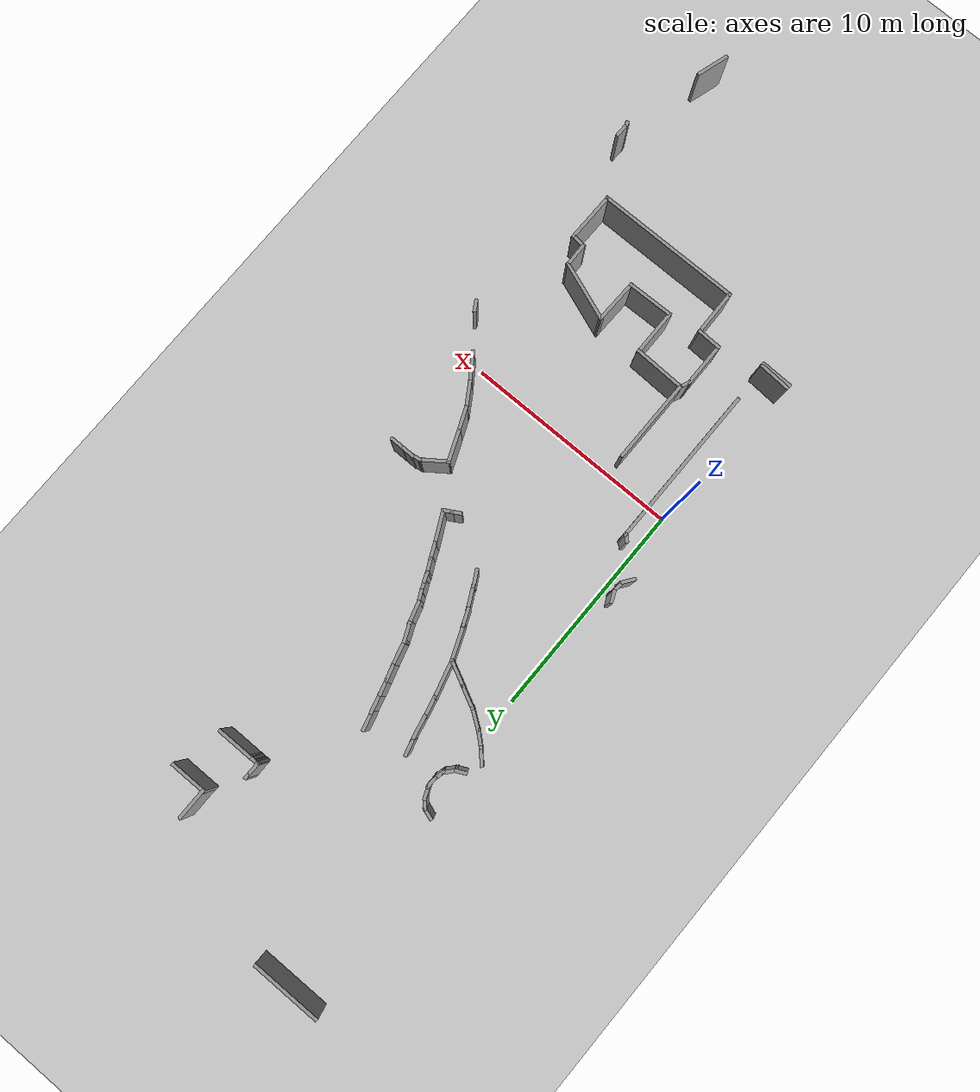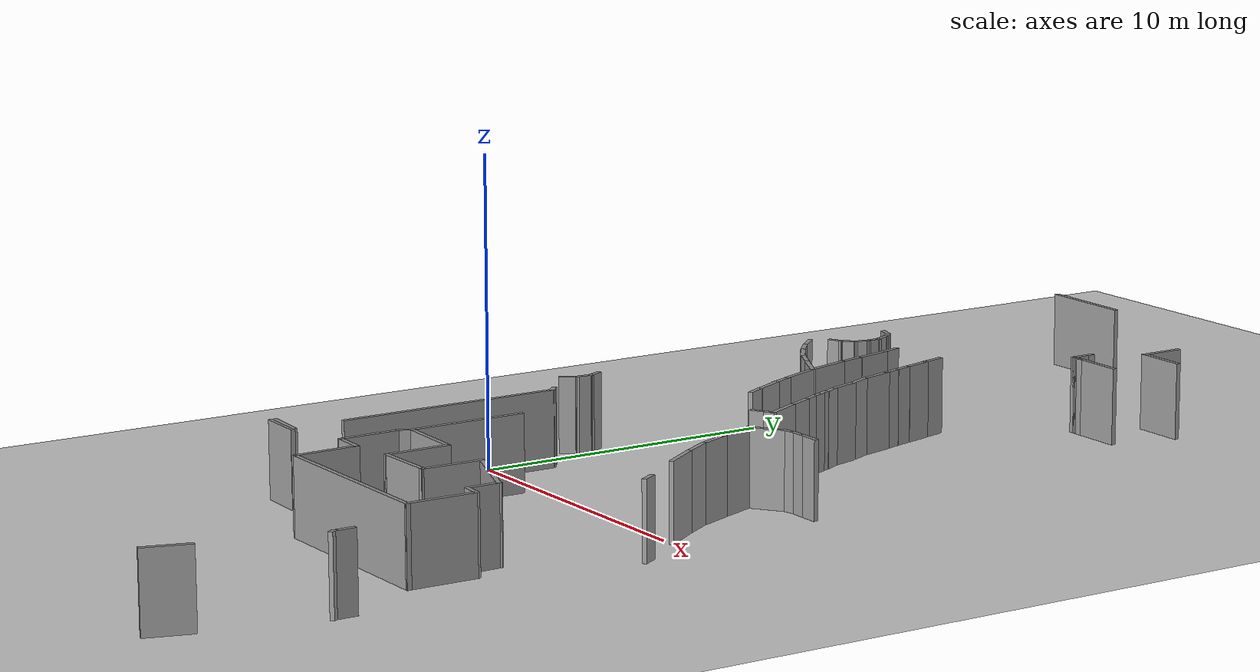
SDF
<sdf version="1.6">
 <world name="default">
  <model name="ground_plane">
   <static>1</static>
   <link name="link">
    <collision name="collision">
     <geometry><plane><normal>0 0 1</normal><size>100 100</size></plane></geometry>
     <surface><friction><ode><mu>100</mu><mu2>50</mu2></ode></friction></surface>
    </collision>
    <visual name="visual">
     <cast_shadows>0</cast_shadows>
     <geometry><plane><normal>0 0 1</normal><size>100 100</size></plane></geometry>
     <material>
      <script><uri>file://media/materials/scripts/gazebo.material</uri><name>Gazebo/Grey</name></script>
     </material>
    </visual>
   </link>
  </model>
  <model name="scene">
   <pose>1.8013 -1.70593 0 0 -0 0</pose>
   <link name="Wall_1005">
    <collision name="Wall_1005_Collision">
     <geometry><box><size>1.52737 0.15 2.5</size></box></geometry>
     <pose>0 0 1.25 0 -0 0</pose>
    </collision>
    <visual name="Wall_1005_Visual">
     <pose>0 0 1.25 0 -0 0</pose>
     <geometry><box><size>1.52737 0.15 2.5</size></box></geometry>
     <material>
      <script><uri>file://media/materials/scripts/gazebo.material</uri><name>Gazebo/Grey</name></script>
      <ambient>1 1 1 1</ambient>
     </material>
    </visual>
    <pose>-1.58332 -5.61312 0 0 0 -0.027727</pose>
   </link>
   <link name="Wall_1010">
    <collision name="Wall_1010_Collision">
     <geometry><box><size>0.579868 0.15 2.5</size></box></geometry>
     <pose>0 0 1.25 0 -0 0</pose>
    </collision>
    <visual name="Wall_1010_Visual">
     <pose>0 0 1.25 0 -0 0</pose>
     <geometry><box><size>0.579868 0.15 2.5</size></box></geometry>
     <material>
      <script><uri>file://media/materials/scripts/gazebo.material</uri><name>Gazebo/Grey</name></script>
      <ambient>1 1 1 1</ambient>
     </material>
    </visual>
    <pose>-2.20365 5.85471 0 0 0 -1.13225</pose>
   </link>
   <link name="Wall_1011">
    <collision name="Wall_1011_Collision">
     <geometry><box><size>0.650095 0.15 2.5</size></box></geometry>
     <pose>0 0 1.25 0 -0 0</pose>
    </collision>
    <visual name="Wall_1011_Visual">
     <pose>0 0 1.25 0 -0 0</pose>
     <geometry><box><size>0.650095 0.15 2.5</size></box></geometry>
     <material>
      <script><uri>file://media/materials/scripts/gazebo.material</uri><name>Gazebo/Grey</name></script>
      <ambient>1 1 1 1</ambient>
     </material>
    </visual>
    <pose>-2.12554 5.41071 0 0 0 -1.66137</pose>
   </link>
   <link name="Wall_1012">
    <collision name="Wall_1012_Collision">
     <geometry><box><size>0.65276 0.15 2.5</size></box></geometry>
     <pose>0 0 1.25 0 -0 0</pose>
    </collision>
    <visual name="Wall_1012_Visual">
     <pose>0 0 1.25 0 -0 0</pose>
     <geometry><box><size>0.65276 0.15 2.5</size></box></geometry>
     <material>
      <script><uri>file://media/materials/scripts/gazebo.material</uri><name>Gazebo/Grey</name></script>
      <ambient>1 1 1 1</ambient>
     </material>
    </visual>
    <pose>-2.28552 4.95725 0 0 0 -2.1945</pose>
   </link>
   <link name="Wall_627">
    <collision name="Wall_627_Collision">
     <geometry><box><size>3.25 0.15 2.5</size></box></geometry>
     <pose>0 0 1.25 0 -0 0</pose>
    </collision>
    <visual name="Wall_627_Visual">
     <pose>0 0 1.25 0 -0 0</pose>
     <geometry><box><size>3.25 0.15 2.5</size></box></geometry>
     <material>
      <script><uri>file://media/materials/scripts/gazebo.material</uri><name>Gazebo/Grey</name></script>
      <ambient>1 1 1 1</ambient>
     </material>
    </visual>
    <pose>-2.20221 25.8756 0 0 -0 0</pose>
   </link>
   <link name="Wall_644">
    <collision name="Wall_644_Collision">
     <geometry><box><size>1.5 0.15 2.5</size></box></geometry>
     <pose>0 0 1.25 0 -0 0</pose>
    </collision>
    <visual name="Wall_644_Visual">
     <pose>0 0 1.25 0 -0 0</pose>
     <geometry><box><size>1.5 0.15 2.5</size></box></geometry>
     <material>
      <script><uri>file://media/materials/scripts/gazebo.material</uri><name>Gazebo/Grey</name></script>
      <ambient>1 1 1 1</ambient>
     </material>
    </visual>
    <pose>5.3457 22.9019 0 0 0 -1.5708</pose>
   </link>
   <link name="Wall_646">
    <collision name="Wall_646_Collision">
     <geometry><box><size>1.75 0.15 2.5</size></box></geometry>
     <pose>0 0 1.25 0 -0 0</pose>
    </collision>
    <visual name="Wall_646_Visual">
     <pose>0 0 1.25 0 -0 0</pose>
     <geometry><box><size>1.75 0.15 2.5</size></box></geometry>
     <material>
      <script><uri>file://media/materials/scripts/gazebo.material</uri><name>Gazebo/Grey</name></script>
      <ambient>1 1 1 1</ambient>
     </material>
    </visual>
    <pose>6.12944 22.2233 0 0 -0 0</pose>
   </link>
   <link name="Wall_648">
    <collision name="Wall_648_Collision">
     <geometry><box><size>1.75 0.15 2.5</size></box></geometry>
     <pose>0 0 1.25 0 -0 0</pose>
    </collision>
    <visual name="Wall_648_Visual">
     <pose>0 0 1.25 0 -0 0</pose>
     <geometry><box><size>1.75 0.15 2.5</size></box></geometry>
     <material>
      <script><uri>file://media/materials/scripts/gazebo.material</uri><name>Gazebo/Grey</name></script>
      <ambient>1 1 1 1</ambient>
     </material>
    </visual>
    <pose>5.5735 20.0492 0 0 -0 3.14159</pose>
   </link>
   <link name="Wall_649">
    <collision name="Wall_649_Collision">
     <geometry><box><size>0.25 0.15 2.5</size></box></geometry>
     <pose>0 0 1.25 0 -0 0</pose>
    </collision>
    <visual name="Wall_649_Visual">
     <pose>0 0 1.25 0 -0 0</pose>
     <geometry><box><size>0.25 0.15 2.5</size></box></geometry>
     <material>
      <script><uri>file://media/materials/scripts/gazebo.material</uri><name>Gazebo/Grey</name></script>
      <ambient>1 1 1 1</ambient>
     </material>
    </visual>
    <pose>4.7235 20.0492 0 0 -0 3.14159</pose>
   </link>
   <link name="Wall_650">
    <collision name="Wall_650_Collision">
     <geometry><box><size>0.25 0.15 2.5</size></box></geometry>
     <pose>0 0 1.25 0 -0 0</pose>
    </collision>
    <visual name="Wall_650_Visual">
     <pose>0 0 1.25 0 -0 0</pose>
     <geometry><box><size>0.25 0.15 2.5</size></box></geometry>
     <material>
      <script><uri>file://media/materials/scripts/gazebo.material</uri><name>Gazebo/Grey</name></script>
      <ambient>1 1 1 1</ambient>
     </material>
    </visual>
    <pose>4.6235 20.0492 0 0 -0 3.14159</pose>
   </link>
   <link name="Wall_651">
    <collision name="Wall_651_Collision">
     <geometry><box><size>0.25 0.15 2.5</size></box></geometry>
     <pose>0 0 1.25 0 -0 0</pose>
    </collision>
    <visual name="Wall_651_Visual">
     <pose>0 0 1.25 0 -0 0</pose>
     <geometry><box><size>0.25 0.15 2.5</size></box></geometry>
     <material>
      <script><uri>file://media/materials/scripts/gazebo.material</uri><name>Gazebo/Grey</name></script>
      <ambient>1 1 1 1</ambient>
     </material>
    </visual>
    <pose>4.5235 20.0492 0 0 -0 3.14159</pose>
   </link>
   <link name="Wall_652">
    <collision name="Wall_652_Collision">
     <geometry><box><size>0.237671 0.15 2.5</size></box></geometry>
     <pose>0 0 1.25 0 -0 0</pose>
    </collision>
    <visual name="Wall_652_Visual">
     <pose>0 0 1.25 0 -0 0</pose>
     <geometry><box><size>0.237671 0.15 2.5</size></box></geometry>
     <material>
      <script><uri>file://media/materials/scripts/gazebo.material</uri><name>Gazebo/Grey</name></script>
      <ambient>1 1 1 1</ambient>
     </material>
    </visual>
    <pose>4.42978 20.0524 0 0 -0 3.06994</pose>
   </link>
   <link name="Wall_653">
    <collision name="Wall_653_Collision">
     <geometry><box><size>0.75 0.15 2.5</size></box></geometry>
     <pose>0 0 1.25 0 -0 0</pose>
    </collision>
    <visual name="Wall_653_Visual">
     <pose>0 0 1.25 0 -0 0</pose>
     <geometry><box><size>0.75 0.15 2.5</size></box></geometry>
     <material>
      <script><uri>file://media/materials/scripts/gazebo.material</uri><name>Gazebo/Grey</name></script>
      <ambient>1 1 1 1</ambient>
     </material>
    </visual>
    <pose>4.38605 20.3492 0 0 -0 1.5708</pose>
   </link>
   <link name="Wall_654">
    <collision name="Wall_654_Collision">
     <geometry><box><size>0.25 0.15 2.5</size></box></geometry>
     <pose>0 0 1.25 0 -0 0</pose>
    </collision>
    <visual name="Wall_654_Visual">
     <pose>0 0 1.25 0 -0 0</pose>
     <geometry><box><size>0.25 0.15 2.5</size></box></geometry>
     <material>
      <script><uri>file://media/materials/scripts/gazebo.material</uri><name>Gazebo/Grey</name></script>
      <ambient>1 1 1 1</ambient>
     </material>
    </visual>
    <pose>4.38605 20.7055 0 0 -0 1.5708</pose>
   </link>
   <link name="Wall_657">
    <collision name="Wall_657_Collision">
     <geometry><box><size>0.898064 0.15 2.5</size></box></geometry>
     <pose>0 0 1.25 0 -0 0</pose>
    </collision>
    <visual name="Wall_657_Visual">
     <pose>0 0 1.25 0 -0 0</pose>
     <geometry><box><size>0.898064 0.15 2.5</size></box></geometry>
     <material>
      <script><uri>file://media/materials/scripts/gazebo.material</uri><name>Gazebo/Grey</name></script>
      <ambient>1 1 1 1</ambient>
     </material>
    </visual>
    <pose>2.1438 15.9853 0 0 0 -1.31593</pose>
   </link>
   <link name="Wall_658">
    <collision name="Wall_658_Collision">
     <geometry><box><size>0.954227 0.15 2.5</size></box></geometry>
     <pose>0 0 1.25 0 -0 0</pose>
    </collision>
    <visual name="Wall_658_Visual">
     <pose>0 0 1.25 0 -0 0</pose>
     <geometry><box><size>0.954227 0.15 2.5</size></box></geometry>
     <material>
      <script><uri>file://media/materials/scripts/gazebo.material</uri><name>Gazebo/Grey</name></script>
      <ambient>1 1 1 1</ambient>
     </material>
    </visual>
    <pose>2.35365 15.2461 0 0 0 -1.30804</pose>
   </link>
   <link name="Wall_659">
    <collision name="Wall_659_Collision">
     <geometry><box><size>0.742305 0.15 2.5</size></box></geometry>
     <pose>0 0 1.25 0 -0 0</pose>
    </collision>
    <visual name="Wall_659_Visual">
     <pose>0 0 1.25 0 -0 0</pose>
     <geometry><box><size>0.742305 0.15 2.5</size></box></geometry>
     <material>
      <script><uri>file://media/materials/scripts/gazebo.material</uri><name>Gazebo/Grey</name></script>
      <ambient>1 1 1 1</ambient>
     </material>
    </visual>
    <pose>2.53019 14.5736 0 0 0 -1.28604</pose>
   </link>
   <link name="Wall_661">
    <collision name="Wall_661_Collision">
     <geometry><box><size>0.777394 0.15 2.5</size></box></geometry>
     <pose>0 0 1.25 0 -0 0</pose>
    </collision>
    <visual name="Wall_661_Visual">
     <pose>0 0 1.25 0 -0 0</pose>
     <geometry><box><size>0.777394 0.15 2.5</size></box></geometry>
     <material>
      <script><uri>file://media/materials/scripts/gazebo.material</uri><name>Gazebo/Grey</name></script>
      <ambient>1 1 1 1</ambient>
     </material>
    </visual>
    <pose>2.70214 13.9774 0 0 0 -1.28397</pose>
   </link>
   <link name="Wall_662">
    <collision name="Wall_662_Collision">
     <geometry><box><size>1.22569 0.15 2.5</size></box></geometry>
     <pose>0 0 1.25 0 -0 0</pose>
    </collision>
    <visual name="Wall_662_Visual">
     <pose>0 0 1.25 0 -0 0</pose>
     <geometry><box><size>1.22569 0.15 2.5</size></box></geometry>
     <material>
      <script><uri>file://media/materials/scripts/gazebo.material</uri><name>Gazebo/Grey</name></script>
      <ambient>1 1 1 1</ambient>
     </material>
    </visual>
    <pose>2.93879 13.1563 0 0 0 -1.31362</pose>
   </link>
   <link name="Wall_663">
    <collision name="Wall_663_Collision">
     <geometry><box><size>0.929904 0.15 2.5</size></box></geometry>
     <pose>0 0 1.25 0 -0 0</pose>
    </collision>
    <visual name="Wall_663_Visual">
     <pose>0 0 1.25 0 -0 0</pose>
     <geometry><box><size>0.929904 0.15 2.5</size></box></geometry>
     <material>
      <script><uri>file://media/materials/scripts/gazebo.material</uri><name>Gazebo/Grey</name></script>
      <ambient>1 1 1 1</ambient>
     </material>
    </visual>
    <pose>3.23258 12.2903 0 0 0 -1.15647</pose>
   </link>
   <link name="Wall_664">
    <collision name="Wall_664_Collision">
     <geometry><box><size>1.06242 0.15 2.5</size></box></geometry>
     <pose>0 0 1.25 0 -0 0</pose>
    </collision>
    <visual name="Wall_664_Visual">
     <pose>0 0 1.25 0 -0 0</pose>
     <geometry><box><size>1.06242 0.15 2.5</size></box></geometry>
     <material>
      <script><uri>file://media/materials/scripts/gazebo.material</uri><name>Gazebo/Grey</name></script>
      <ambient>1 1 1 1</ambient>
     </material>
    </visual>
    <pose>3.52732 11.4951 0 0 0 -1.28948</pose>
   </link>
   <link name="Wall_666">
    <collision name="Wall_666_Collision">
     <geometry><box><size>0.61358 0.15 2.5</size></box></geometry>
     <pose>0 0 1.25 0 -0 0</pose>
    </collision>
    <visual name="Wall_666_Visual">
     <pose>0 0 1.25 0 -0 0</pose>
     <geometry><box><size>0.61358 0.15 2.5</size></box></geometry>
     <material>
      <script><uri>file://media/materials/scripts/gazebo.material</uri><name>Gazebo/Grey</name></script>
      <ambient>1 1 1 1</ambient>
     </material>
    </visual>
    <pose>3.76923 10.8497 0 0 0 -1.10476</pose>
   </link>
   <link name="Wall_667">
    <collision name="Wall_667_Collision">
     <geometry><box><size>0.543085 0.15 2.5</size></box></geometry>
     <pose>0 0 1.25 0 -0 0</pose>
    </collision>
    <visual name="Wall_667_Visual">
     <pose>0 0 1.25 0 -0 0</pose>
     <geometry><box><size>0.543085 0.15 2.5</size></box></geometry>
     <material>
      <script><uri>file://media/materials/scripts/gazebo.material</uri><name>Gazebo/Grey</name></script>
      <ambient>1 1 1 1</ambient>
     </material>
    </visual>
    <pose>3.94088 10.4625 0 0 0 -1.15936</pose>
   </link>
   <link name="Wall_668">
    <collision name="Wall_668_Collision">
     <geometry><box><size>0.524174 0.15 2.5</size></box></geometry>
     <pose>0 0 1.25 0 -0 0</pose>
    </collision>
    <visual name="Wall_668_Visual">
     <pose>0 0 1.25 0 -0 0</pose>
     <geometry><box><size>0.524174 0.15 2.5</size></box></geometry>
     <material>
      <script><uri>file://media/materials/scripts/gazebo.material</uri><name>Gazebo/Grey</name></script>
      <ambient>1 1 1 1</ambient>
     </material>
    </visual>
    <pose>4.10027 10.1088 0 0 0 -1.18916</pose>
   </link>
   <link name="Wall_669">
    <collision name="Wall_669_Collision">
     <geometry><box><size>0.726387 0.15 2.5</size></box></geometry>
     <pose>0 0 1.25 0 -0 0</pose>
    </collision>
    <visual name="Wall_669_Visual">
     <pose>0 0 1.25 0 -0 0</pose>
     <geometry><box><size>0.726387 0.15 2.5</size></box></geometry>
     <material>
      <script><uri>file://media/materials/scripts/gazebo.material</uri><name>Gazebo/Grey</name></script>
      <ambient>1 1 1 1</ambient>
     </material>
    </visual>
    <pose>4.29836 9.66874 0 0 0 -1.10896</pose>
   </link>
   <link name="Wall_670">
    <collision name="Wall_670_Collision">
     <geometry><box><size>0.813438 0.15 2.5</size></box></geometry>
     <pose>0 0 1.25 0 -0 0</pose>
    </collision>
    <visual name="Wall_670_Visual">
     <pose>0 0 1.25 0 -0 0</pose>
     <geometry><box><size>0.813438 0.15 2.5</size></box></geometry>
     <material>
      <script><uri>file://media/materials/scripts/gazebo.material</uri><name>Gazebo/Grey</name></script>
      <ambient>1 1 1 1</ambient>
     </material>
    </visual>
    <pose>4.5632 9.11676 0 0 0 -1.14698</pose>
   </link>
   <link name="Wall_671">
    <collision name="Wall_671_Collision">
     <geometry><box><size>1.53188 0.15 2.5</size></box></geometry>
     <pose>0 0 1.25 0 -0 0</pose>
    </collision>
    <visual name="Wall_671_Visual">
     <pose>0 0 1.25 0 -0 0</pose>
     <geometry><box><size>1.53188 0.15 2.5</size></box></geometry>
     <material>
      <script><uri>file://media/materials/scripts/gazebo.material</uri><name>Gazebo/Grey</name></script>
      <ambient>1 1 1 1</ambient>
     </material>
    </visual>
    <pose>5.00804 8.18772 0 0 0 -1.10806</pose>
   </link>
   <link name="Wall_672">
    <collision name="Wall_672_Collision">
     <geometry><box><size>0.516754 0.15 2.5</size></box></geometry>
     <pose>0 0 1.25 0 -0 0</pose>
    </collision>
    <visual name="Wall_672_Visual">
     <pose>0 0 1.25 0 -0 0</pose>
     <geometry><box><size>0.516754 0.15 2.5</size></box></geometry>
     <material>
      <script><uri>file://media/materials/scripts/gazebo.material</uri><name>Gazebo/Grey</name></script>
      <ambient>1 1 1 1</ambient>
     </material>
    </visual>
    <pose>5.16012 7.48195 0 0 0 -2.64417</pose>
   </link>
   <link name="Wall_673">
    <collision name="Wall_673_Collision">
     <geometry><box><size>0.5 0.15 2.5</size></box></geometry>
     <pose>0 0 1.25 0 -0 0</pose>
    </collision>
    <visual name="Wall_673_Visual">
     <pose>0 0 1.25 0 -0 0</pose>
     <geometry><box><size>0.5 0.15 2.5</size></box></geometry>
     <material>
      <script><uri>file://media/materials/scripts/gazebo.material</uri><name>Gazebo/Grey</name></script>
      <ambient>1 1 1 1</ambient>
     </material>
    </visual>
    <pose>4.85221 7.30695 0 0 0 -2.61799</pose>
   </link>
   <link name="Wall_675">
    <collision name="Wall_675_Collision">
     <geometry><box><size>0.75 0.15 2.5</size></box></geometry>
     <pose>0 0 1.25 0 -0 0</pose>
    </collision>
    <visual name="Wall_675_Visual">
     <pose>0 0 1.25 0 -0 0</pose>
     <geometry><box><size>0.75 0.15 2.5</size></box></geometry>
     <material>
      <script><uri>file://media/materials/scripts/gazebo.material</uri><name>Gazebo/Grey</name></script>
      <ambient>1 1 1 1</ambient>
     </material>
    </visual>
    <pose>0.193089 15.7254 0 0 0 -1.309</pose>
   </link>
   <link name="Wall_676">
    <collision name="Wall_676_Collision">
     <geometry><box><size>1.24609 0.15 2.5</size></box></geometry>
     <pose>0 0 1.25 0 -0 0</pose>
    </collision>
    <visual name="Wall_676_Visual">
     <pose>0 0 1.25 0 -0 0</pose>
     <geometry><box><size>1.24609 0.15 2.5</size></box></geometry>
     <material>
      <script><uri>file://media/materials/scripts/gazebo.material</uri><name>Gazebo/Grey</name></script>
      <ambient>1 1 1 1</ambient>
     </material>
    </visual>
    <pose>0.402759 14.9002 0 0 0 -1.35502</pose>
   </link>
   <link name="Wall_677">
    <collision name="Wall_677_Collision">
     <geometry><box><size>0.978579 0.15 2.5</size></box></geometry>
     <pose>0 0 1.25 0 -0 0</pose>
    </collision>
    <visual name="Wall_677_Visual">
     <pose>0 0 1.25 0 -0 0</pose>
     <geometry><box><size>0.978579 0.15 2.5</size></box></geometry>
     <material>
      <script><uri>file://media/materials/scripts/gazebo.material</uri><name>Gazebo/Grey</name></script>
      <ambient>1 1 1 1</ambient>
     </material>
    </visual>
    <pose>0.600729 13.9617 0 0 0 -1.33865</pose>
   </link>
   <link name="Wall_678">
    <collision name="Wall_678_Collision">
     <geometry><box><size>1.75786 0.15 2.5</size></box></geometry>
     <pose>0 0 1.25 0 -0 0</pose>
    </collision>
    <visual name="Wall_678_Visual">
     <pose>0 0 1.25 0 -0 0</pose>
     <geometry><box><size>1.75786 0.15 2.5</size></box></geometry>
     <material>
      <script><uri>file://media/materials/scripts/gazebo.material</uri><name>Gazebo/Grey</name></script>
      <ambient>1 1 1 1</ambient>
     </material>
    </visual>
    <pose>0.906082 12.7679 0 0 0 -1.30646</pose>
   </link>
   <link name="Wall_681">
    <collision name="Wall_681_Collision">
     <geometry><box><size>1.05719 0.15 2.5</size></box></geometry>
     <pose>0 0 1.25 0 -0 0</pose>
    </collision>
    <visual name="Wall_681_Visual">
     <pose>0 0 1.25 0 -0 0</pose>
     <geometry><box><size>1.05719 0.15 2.5</size></box></geometry>
     <material>
      <script><uri>file://media/materials/scripts/gazebo.material</uri><name>Gazebo/Grey</name></script>
      <ambient>1 1 1 1</ambient>
     </material>
    </visual>
    <pose>-1.09446 13.165 0 0 0 -0.624079</pose>
   </link>
   <link name="Wall_682">
    <collision name="Wall_682_Collision">
     <geometry><box><size>1.10113 0.15 2.5</size></box></geometry>
     <pose>0 0 1.25 0 -0 0</pose>
    </collision>
    <visual name="Wall_682_Visual">
     <pose>0 0 1.25 0 -0 0</pose>
     <geometry><box><size>1.10113 0.15 2.5</size></box></geometry>
     <material>
      <script><uri>file://media/materials/scripts/gazebo.material</uri><name>Gazebo/Grey</name></script>
      <ambient>1 1 1 1</ambient>
     </material>
    </visual>
    <pose>-0.300525 12.7029 0 0 0 -0.461373</pose>
   </link>
   <link name="Wall_683">
    <collision name="Wall_683_Collision">
     <geometry><box><size>1.26019 0.15 2.5</size></box></geometry>
     <pose>0 0 1.25 0 -0 0</pose>
    </collision>
    <visual name="Wall_683_Visual">
     <pose>0 0 1.25 0 -0 0</pose>
     <geometry><box><size>1.26019 0.15 2.5</size></box></geometry>
     <material>
      <script><uri>file://media/materials/scripts/gazebo.material</uri><name>Gazebo/Grey</name></script>
      <ambient>1 1 1 1</ambient>
     </material>
    </visual>
    <pose>0.624616 12.2341 0 0 0 -0.452009</pose>
   </link>
   <link name="Wall_684">
    <collision name="Wall_684_Collision">
     <geometry><box><size>1.59653 0.15 2.5</size></box></geometry>
     <pose>0 0 1.25 0 -0 0</pose>
    </collision>
    <visual name="Wall_684_Visual">
     <pose>0 0 1.25 0 -0 0</pose>
     <geometry><box><size>1.59653 0.15 2.5</size></box></geometry>
     <material>
      <script><uri>file://media/materials/scripts/gazebo.material</uri><name>Gazebo/Grey</name></script>
      <ambient>1 1 1 1</ambient>
     </material>
    </visual>
    <pose>1.39246 11.3054 0 0 0 -1.1904</pose>
   </link>
   <link name="Wall_685">
    <collision name="Wall_685_Collision">
     <geometry><box><size>0.869309 0.15 2.5</size></box></geometry>
     <pose>0 0 1.25 0 -0 0</pose>
    </collision>
    <visual name="Wall_685_Visual">
     <pose>0 0 1.25 0 -0 0</pose>
     <geometry><box><size>0.869309 0.15 2.5</size></box></geometry>
     <material>
      <script><uri>file://media/materials/scripts/gazebo.material</uri><name>Gazebo/Grey</name></script>
      <ambient>1 1 1 1</ambient>
     </material>
    </visual>
    <pose>1.81099 10.3153 0 0 0 -1.18506</pose>
   </link>
   <link name="Wall_686">
    <collision name="Wall_686_Collision">
     <geometry><box><size>1.11078 0.15 2.5</size></box></geometry>
     <pose>0 0 1.25 0 -0 0</pose>
    </collision>
    <visual name="Wall_686_Visual">
     <pose>0 0 1.25 0 -0 0</pose>
     <geometry><box><size>1.11078 0.15 2.5</size></box></geometry>
     <material>
      <script><uri>file://media/materials/scripts/gazebo.material</uri><name>Gazebo/Grey</name></script>
      <ambient>1 1 1 1</ambient>
     </material>
    </visual>
    <pose>2.17707 9.56812 0 0 0 -1.1039</pose>
   </link>
   <link name="Wall_687">
    <collision name="Wall_687_Collision">
     <geometry><box><size>0.80842 0.15 2.5</size></box></geometry>
     <pose>0 0 1.25 0 -0 0</pose>
    </collision>
    <visual name="Wall_687_Visual">
     <pose>0 0 1.25 0 -0 0</pose>
     <geometry><box><size>0.80842 0.15 2.5</size></box></geometry>
     <material>
      <script><uri>file://media/materials/scripts/gazebo.material</uri><name>Gazebo/Grey</name></script>
      <ambient>1 1 1 1</ambient>
     </material>
    </visual>
    <pose>2.53581 8.85027 0 0 0 -1.07249</pose>
   </link>
   <link name="Wall_689">
    <collision name="Wall_689_Collision">
     <geometry><box><size>0.830145 0.15 2.5</size></box></geometry>
     <pose>0 0 1.25 0 -0 0</pose>
    </collision>
    <visual name="Wall_689_Visual">
     <pose>0 0 1.25 0 -0 0</pose>
     <geometry><box><size>0.830145 0.15 2.5</size></box></geometry>
     <material>
      <script><uri>file://media/materials/scripts/gazebo.material</uri><name>Gazebo/Grey</name></script>
      <ambient>1 1 1 1</ambient>
     </material>
    </visual>
    <pose>-1.7302 13.6533 0 0 -0 2.42551</pose>
   </link>
   <link name="Wall_690">
    <collision name="Wall_690_Collision">
     <geometry><box><size>0.861156 0.15 2.5</size></box></geometry>
     <pose>0 0 1.25 0 -0 0</pose>
    </collision>
    <visual name="Wall_690_Visual">
     <pose>0 0 1.25 0 -0 0</pose>
     <geometry><box><size>0.861156 0.15 2.5</size></box></geometry>
     <material>
      <script><uri>file://media/materials/scripts/gazebo.material</uri><name>Gazebo/Grey</name></script>
      <ambient>1 1 1 1</ambient>
     </material>
    </visual>
    <pose>-2.22152 14.1335 0 0 -0 2.33412</pose>
   </link>
   <link name="Wall_702">
    <collision name="Wall_702_Collision">
     <geometry><box><size>0.601332 0.15 2.5</size></box></geometry>
     <pose>0 0 1.25 0 -0 0</pose>
    </collision>
    <visual name="Wall_702_Visual">
     <pose>0 0 1.25 0 -0 0</pose>
     <geometry><box><size>0.601332 0.15 2.5</size></box></geometry>
     <material>
      <script><uri>file://media/materials/scripts/gazebo.material</uri><name>Gazebo/Grey</name></script>
      <ambient>1 1 1 1</ambient>
     </material>
    </visual>
    <pose>-2.03798 17.1932 0 0 0 -0.328043</pose>
   </link>
   <link name="Wall_703">
    <collision name="Wall_703_Collision">
     <geometry><box><size>0.545925 0.15 2.5</size></box></geometry>
     <pose>0 0 1.25 0 -0 0</pose>
    </collision>
    <visual name="Wall_703_Visual">
     <pose>0 0 1.25 0 -0 0</pose>
     <geometry><box><size>0.545925 0.15 2.5</size></box></geometry>
     <material>
      <script><uri>file://media/materials/scripts/gazebo.material</uri><name>Gazebo/Grey</name></script>
      <ambient>1 1 1 1</ambient>
     </material>
    </visual>
    <pose>-1.68832 16.9692 0 0 0 -0.870093</pose>
   </link>
   <link name="Wall_704">
    <collision name="Wall_704_Collision">
     <geometry><box><size>0.621068 0.15 2.5</size></box></geometry>
     <pose>0 0 1.25 0 -0 0</pose>
    </collision>
    <visual name="Wall_704_Visual">
     <pose>0 0 1.25 0 -0 0</pose>
     <geometry><box><size>0.621068 0.15 2.5</size></box></geometry>
     <material>
      <script><uri>file://media/materials/scripts/gazebo.material</uri><name>Gazebo/Grey</name></script>
      <ambient>1 1 1 1</ambient>
     </material>
    </visual>
    <pose>-1.46693 16.6102 0 0 0 -1.16144</pose>
   </link>
   <link name="Wall_705">
    <collision name="Wall_705_Collision">
     <geometry><box><size>0.586849 0.15 2.5</size></box></geometry>
     <pose>0 0 1.25 0 -0 0</pose>
    </collision>
    <visual name="Wall_705_Visual">
     <pose>0 0 1.25 0 -0 0</pose>
     <geometry><box><size>0.586849 0.15 2.5</size></box></geometry>
     <material>
      <script><uri>file://media/materials/scripts/gazebo.material</uri><name>Gazebo/Grey</name></script>
      <ambient>1 1 1 1</ambient>
     </material>
    </visual>
    <pose>-1.36271 16.1757 0 0 0 -1.56125</pose>
   </link>
   <link name="Wall_706">
    <collision name="Wall_706_Collision">
     <geometry><box><size>0.566044 0.15 2.5</size></box></geometry>
     <pose>0 0 1.25 0 -0 0</pose>
    </collision>
    <visual name="Wall_706_Visual">
     <pose>0 0 1.25 0 -0 0</pose>
     <geometry><box><size>0.566044 0.15 2.5</size></box></geometry>
     <material>
      <script><uri>file://media/materials/scripts/gazebo.material</uri><name>Gazebo/Grey</name></script>
      <ambient>1 1 1 1</ambient>
     </material>
    </visual>
    <pose>-1.42247 15.7563 0 0 0 -1.83065</pose>
   </link>
   <link name="Wall_707">
    <collision name="Wall_707_Collision">
     <geometry><box><size>0.626015 0.15 2.5</size></box></geometry>
     <pose>0 0 1.25 0 -0 0</pose>
    </collision>
    <visual name="Wall_707_Visual">
     <pose>0 0 1.25 0 -0 0</pose>
     <geometry><box><size>0.626015 0.15 2.5</size></box></geometry>
     <material>
      <script><uri>file://media/materials/scripts/gazebo.material</uri><name>Gazebo/Grey</name></script>
      <ambient>1 1 1 1</ambient>
     </material>
    </visual>
    <pose>-1.64295 15.3778 0 0 0 -2.30032</pose>
   </link>
   <link name="Wall_708">
    <collision name="Wall_708_Collision">
     <geometry><box><size>0.54591 0.15 2.5</size></box></geometry>
     <pose>0 0 1.25 0 -0 0</pose>
    </collision>
    <visual name="Wall_708_Visual">
     <pose>0 0 1.25 0 -0 0</pose>
     <geometry><box><size>0.54591 0.15 2.5</size></box></geometry>
     <material>
      <script><uri>file://media/materials/scripts/gazebo.material</uri><name>Gazebo/Grey</name></script>
      <ambient>1 1 1 1</ambient>
     </material>
    </visual>
    <pose>-1.98829 15.1144 0 0 0 -2.69238</pose>
   </link>
   <link name="Wall_714">
    <collision name="Wall_714_Collision">
     <geometry><box><size>0.75 0.15 2.5</size></box></geometry>
     <pose>0 0 1.25 0 -0 0</pose>
    </collision>
    <visual name="Wall_714_Visual">
     <pose>0 0 1.25 0 -0 0</pose>
     <geometry><box><size>0.75 0.15 2.5</size></box></geometry>
     <material>
      <script><uri>file://media/materials/scripts/gazebo.material</uri><name>Gazebo/Grey</name></script>
      <ambient>1 1 1 1</ambient>
     </material>
    </visual>
    <pose>8.52841 6.65926 0 0 -0 3.14159</pose>
   </link>
   <link name="Wall_715">
    <collision name="Wall_715_Collision">
     <geometry><box><size>0.631739 0.15 2.5</size></box></geometry>
     <pose>0 0 1.25 0 -0 0</pose>
    </collision>
    <visual name="Wall_715_Visual">
     <pose>0 0 1.25 0 -0 0</pose>
     <geometry><box><size>0.631739 0.15 2.5</size></box></geometry>
     <material>
      <script><uri>file://media/materials/scripts/gazebo.material</uri><name>Gazebo/Grey</name></script>
      <ambient>1 1 1 1</ambient>
     </material>
    </visual>
    <pose>7.98754 6.65926 0 0 -0 3.14159</pose>
   </link>
   <link name="Wall_716">
    <collision name="Wall_716_Collision">
     <geometry><box><size>0.488525 0.15 2.5</size></box></geometry>
     <pose>0 0 1.25 0 -0 0</pose>
    </collision>
    <visual name="Wall_716_Visual">
     <pose>0 0 1.25 0 -0 0</pose>
     <geometry><box><size>0.488525 0.15 2.5</size></box></geometry>
     <material>
      <script><uri>file://media/materials/scripts/gazebo.material</uri><name>Gazebo/Grey</name></script>
      <ambient>1 1 1 1</ambient>
     </material>
    </visual>
    <pose>7.57489 6.61946 0 0 0 -2.96995</pose>
   </link>
   <link name="Wall_717">
    <collision name="Wall_717_Collision">
     <geometry><box><size>1.33116 0.15 2.5</size></box></geometry>
     <pose>0 0 1.25 0 -0 0</pose>
    </collision>
    <visual name="Wall_717_Visual">
     <pose>0 0 1.25 0 -0 0</pose>
     <geometry><box><size>1.33116 0.15 2.5</size></box></geometry>
     <material>
      <script><uri>file://media/materials/scripts/gazebo.material</uri><name>Gazebo/Grey</name></script>
      <ambient>1 1 1 1</ambient>
     </material>
    </visual>
    <pose>6.92962 6.23965 0 0 0 -2.51671</pose>
   </link>
   <link name="Wall_718">
    <collision name="Wall_718_Collision">
     <geometry><box><size>1.47101 0.15 2.5</size></box></geometry>
     <pose>0 0 1.25 0 -0 0</pose>
    </collision>
    <visual name="Wall_718_Visual">
     <pose>0 0 1.25 0 -0 0</pose>
     <geometry><box><size>1.47101 0.15 2.5</size></box></geometry>
     <material>
      <script><uri>file://media/materials/scripts/gazebo.material</uri><name>Gazebo/Grey</name></script>
      <ambient>1 1 1 1</ambient>
     </material>
    </visual>
    <pose>6.69979 5.27696 0 0 0 -1.18401</pose>
   </link>
   <link name="Wall_719">
    <collision name="Wall_719_Collision">
     <geometry><box><size>1.2077 0.15 2.5</size></box></geometry>
     <pose>0 0 1.25 0 -0 0</pose>
    </collision>
    <visual name="Wall_719_Visual">
     <pose>0 0 1.25 0 -0 0</pose>
     <geometry><box><size>1.2077 0.15 2.5</size></box></geometry>
     <material>
      <script><uri>file://media/materials/scripts/gazebo.material</uri><name>Gazebo/Grey</name></script>
      <ambient>1 1 1 1</ambient>
     </material>
    </visual>
    <pose>7.15775 4.17705 0 0 0 -1.17619</pose>
   </link>
   <link name="Wall_720">
    <collision name="Wall_720_Collision">
     <geometry><box><size>1.24619 0.15 2.5</size></box></geometry>
     <pose>0 0 1.25 0 -0 0</pose>
    </collision>
    <visual name="Wall_720_Visual">
     <pose>0 0 1.25 0 -0 0</pose>
     <geometry><box><size>1.24619 0.15 2.5</size></box></geometry>
     <material>
      <script><uri>file://media/materials/scripts/gazebo.material</uri><name>Gazebo/Grey</name></script>
      <ambient>1 1 1 1</ambient>
     </material>
    </visual>
    <pose>7.64711 3.22471 0 0 0 -1.00995</pose>
   </link>
   <link name="Wall_721">
    <collision name="Wall_721_Collision">
     <geometry><box><size>1.42582 0.15 2.5</size></box></geometry>
     <pose>0 0 1.25 0 -0 0</pose>
    </collision>
    <visual name="Wall_721_Visual">
     <pose>0 0 1.25 0 -0 0</pose>
     <geometry><box><size>1.42582 0.15 2.5</size></box></geometry>
     <material>
      <script><uri>file://media/materials/scripts/gazebo.material</uri><name>Gazebo/Grey</name></script>
      <ambient>1 1 1 1</ambient>
     </material>
    </visual>
    <pose>8.30093 2.24101 0 0 0 -0.96682</pose>
   </link>
   <link name="Wall_725">
    <collision name="Wall_725_Collision">
     <geometry><box><size>0.55667 0.15 2.5</size></box></geometry>
     <pose>0 0 1.25 0 -0 0</pose>
    </collision>
    <visual name="Wall_725_Visual">
     <pose>0 0 1.25 0 -0 0</pose>
     <geometry><box><size>0.55667 0.15 2.5</size></box></geometry>
     <material>
      <script><uri>file://media/materials/scripts/gazebo.material</uri><name>Gazebo/Grey</name></script>
      <ambient>1 1 1 1</ambient>
     </material>
    </visual>
    <pose>9.86144 0.132772 0 0 0 -1.02928</pose>
   </link>
   <link name="Wall_893">
    <collision name="Wall_893_Collision">
     <geometry><box><size>1.53379 0.15 2.5</size></box></geometry>
     <pose>0 0 1.25 0 -0 0</pose>
    </collision>
    <visual name="Wall_893_Visual">
     <pose>0 0 1.25 0 -0 0</pose>
     <geometry><box><size>1.53379 0.15 2.5</size></box></geometry>
     <material>
      <script><uri>file://media/materials/scripts/gazebo.material</uri><name>Gazebo/Grey</name></script>
      <ambient>1 1 1 1</ambient>
     </material>
    </visual>
    <pose>8.92175 -14.5536 0 0 -0 1.27286</pose>
   </link>
   <link name="Wall_929">
    <collision name="Wall_929_Collision">
     <geometry><box><size>0.25 0.15 2.5</size></box></geometry>
     <pose>0 0 1.25 0 -0 0</pose>
    </collision>
    <visual name="Wall_929_Visual">
     <pose>0 0 1.25 0 -0 0</pose>
     <geometry><box><size>0.25 0.15 2.5</size></box></geometry>
     <material>
      <script><uri>file://media/materials/scripts/gazebo.material</uri><name>Gazebo/Grey</name></script>
      <ambient>1 1 1 1</ambient>
     </material>
    </visual>
    <pose>10.0749 -10.1487 0 0 -0 2.0944</pose>
   </link>
   <link name="Wall_930">
    <collision name="Wall_930_Collision">
     <geometry><box><size>0.75 0.15 2.5</size></box></geometry>
     <pose>0 0 1.25 0 -0 0</pose>
    </collision>
    <visual name="Wall_930_Visual">
     <pose>0 0 1.25 0 -0 0</pose>
     <geometry><box><size>0.75 0.15 2.5</size></box></geometry>
     <material>
      <script><uri>file://media/materials/scripts/gazebo.material</uri><name>Gazebo/Grey</name></script>
      <ambient>1 1 1 1</ambient>
     </material>
    </visual>
    <pose>10.0499 -9.80536 0 0 -0 1.5708</pose>
   </link>
   <link name="Wall_962">
    <collision name="Wall_962_Collision">
     <geometry><box><size>0.410121 0.15 2.5</size></box></geometry>
     <pose>0 0 1.25 0 -0 0</pose>
    </collision>
    <visual name="Wall_962_Visual">
     <pose>0 0 1.25 0 -0 0</pose>
     <geometry><box><size>0.410121 0.15 2.5</size></box></geometry>
     <material>
      <script><uri>file://media/materials/scripts/gazebo.material</uri><name>Gazebo/Grey</name></script>
      <ambient>1 1 1 1</ambient>
     </material>
    </visual>
    <pose>-1.1255 3.65986 0 0 0 -0.752379</pose>
   </link>
   <link name="Wall_963">
    <collision name="Wall_963_Collision">
     <geometry><box><size>7.47968 0.15 2.5</size></box></geometry>
     <pose>0 0 1.25 0 -0 0</pose>
    </collision>
    <visual name="Wall_963_Visual">
     <pose>0 0 1.25 0 -0 0</pose>
     <geometry><box><size>7.47968 0.15 2.5</size></box></geometry>
     <material>
      <script><uri>file://media/materials/scripts/gazebo.material</uri><name>Gazebo/Grey</name></script>
      <ambient>1 1 1 1</ambient>
     </material>
    </visual>
    <pose>-1.01552 -0.093858 0 0 0 -1.5719</pose>
   </link>
   <link name="Wall_971">
    <collision name="Wall_971_Collision">
     <geometry><box><size>3.89023 0.15 2.5</size></box></geometry>
     <pose>0 0 1.25 0 -0 0</pose>
    </collision>
    <visual name="Wall_971_Visual">
     <pose>0 0 1.25 0 -0 0</pose>
     <geometry><box><size>3.89023 0.15 2.5</size></box></geometry>
     <material>
      <script><uri>file://media/materials/scripts/gazebo.material</uri><name>Gazebo/Grey</name></script>
      <ambient>1 1 1 1</ambient>
     </material>
    </visual>
    <pose>1.14706 -0.752628 0 0 0 -1.57373</pose>
   </link>
   <link name="Wall_972">
    <collision name="Wall_972_Collision">
     <geometry><box><size>0.601654 0.15 2.5</size></box></geometry>
     <pose>0 0 1.25 0 -0 0</pose>
    </collision>
    <visual name="Wall_972_Visual">
     <pose>0 0 1.25 0 -0 0</pose>
     <geometry><box><size>0.601654 0.15 2.5</size></box></geometry>
     <material>
      <script><uri>file://media/materials/scripts/gazebo.material</uri><name>Gazebo/Grey</name></script>
      <ambient>1 1 1 1</ambient>
     </material>
    </visual>
    <pose>1.06334 -2.8302 0 0 0 -1.97689</pose>
   </link>
   <link name="Wall_973">
    <collision name="Wall_973_Collision">
     <geometry><box><size>2.10981 0.15 2.5</size></box></geometry>
     <pose>0 0 1.25 0 -0 0</pose>
    </collision>
    <visual name="Wall_973_Visual">
     <pose>0 0 1.25 0 -0 0</pose>
     <geometry><box><size>2.10981 0.15 2.5</size></box></geometry>
     <material>
      <script><uri>file://media/materials/scripts/gazebo.material</uri><name>Gazebo/Grey</name></script>
      <ambient>1 1 1 1</ambient>
     </material>
    </visual>
    <pose>0.979622 -4.00657 0 0 0 -1.56519</pose>
   </link>
   <link name="Wall_975">
    <collision name="Wall_975_Collision">
     <geometry><box><size>1.15424 0.15 2.5</size></box></geometry>
     <pose>0 0 1.25 0 -0 0</pose>
    </collision>
    <visual name="Wall_975_Visual">
     <pose>0 0 1.25 0 -0 0</pose>
     <geometry><box><size>1.15424 0.15 2.5</size></box></geometry>
     <material>
      <script><uri>file://media/materials/scripts/gazebo.material</uri><name>Gazebo/Grey</name></script>
      <ambient>1 1 1 1</ambient>
     </material>
    </visual>
    <pose>1.48696 -5.00293 0 0 0 -0.032802</pose>
   </link>
   <link name="Wall_976">
    <collision name="Wall_976_Collision">
     <geometry><box><size>2.18512 0.15 2.5</size></box></geometry>
     <pose>0 0 1.25 0 -0 0</pose>
    </collision>
    <visual name="Wall_976_Visual">
     <pose>0 0 1.25 0 -0 0</pose>
     <geometry><box><size>2.18512 0.15 2.5</size></box></geometry>
     <material>
      <script><uri>file://media/materials/scripts/gazebo.material</uri><name>Gazebo/Grey</name></script>
      <ambient>1 1 1 1</ambient>
     </material>
    </visual>
    <pose>2.01807 -6.03668 0 0 0 -1.55282</pose>
   </link>
   <link name="Wall_977">
    <collision name="Wall_977_Collision">
     <geometry><box><size>6.72361 0.15 2.5</size></box></geometry>
     <pose>0 0 1.25 0 -0 0</pose>
    </collision>
    <visual name="Wall_977_Visual">
     <pose>0 0 1.25 0 -0 0</pose>
     <geometry><box><size>6.72361 0.15 2.5</size></box></geometry>
     <material>
      <script><uri>file://media/materials/scripts/gazebo.material</uri><name>Gazebo/Grey</name></script>
      <ambient>1 1 1 1</ambient>
     </material>
    </visual>
    <pose>5.33414 -7.04811 0 0 -0 0.001782</pose>
   </link>
   <link name="Wall_978">
    <collision name="Wall_978_Collision">
     <geometry><box><size>2.3568 0.15 2.5</size></box></geometry>
     <pose>0 0 1.25 0 -0 0</pose>
    </collision>
    <visual name="Wall_978_Visual">
     <pose>0 0 1.25 0 -0 0</pose>
     <geometry><box><size>2.3568 0.15 2.5</size></box></geometry>
     <material>
      <script><uri>file://media/materials/scripts/gazebo.material</uri><name>Gazebo/Grey</name></script>
      <ambient>1 1 1 1</ambient>
     </material>
    </visual>
    <pose>8.62377 -5.93894 0 0 -0 1.55828</pose>
   </link>
   <link name="Wall_979">
    <collision name="Wall_979_Collision">
     <geometry><box><size>0.724979 0.15 2.5</size></box></geometry>
     <pose>0 0 1.25 0 -0 0</pose>
    </collision>
    <visual name="Wall_979_Visual">
     <pose>0 0 1.25 0 -0 0</pose>
     <geometry><box><size>0.724979 0.15 2.5</size></box></geometry>
     <material>
      <script><uri>file://media/materials/scripts/gazebo.material</uri><name>Gazebo/Grey</name></script>
      <ambient>1 1 1 1</ambient>
     </material>
    </visual>
    <pose>8.35132 -4.79802 0 0 -0 3.04884</pose>
   </link>
   <link name="Wall_980">
    <collision name="Wall_980_Collision">
     <geometry><box><size>1.17979 0.15 2.5</size></box></geometry>
     <pose>0 0 1.25 0 -0 0</pose>
    </collision>
    <visual name="Wall_980_Visual">
     <pose>0 0 1.25 0 -0 0</pose>
     <geometry><box><size>1.17979 0.15 2.5</size></box></geometry>
     <material>
      <script><uri>file://media/materials/scripts/gazebo.material</uri><name>Gazebo/Grey</name></script>
      <ambient>1 1 1 1</ambient>
     </material>
    </visual>
    <pose>8.05139 -4.2457 0 0 -0 1.59736</pose>
   </link>
   <link name="Wall_981">
    <collision name="Wall_981_Collision">
     <geometry><box><size>2.86132 0.15 2.5</size></box></geometry>
     <pose>0 0 1.25 0 -0 0</pose>
    </collision>
    <visual name="Wall_981_Visual">
     <pose>0 0 1.25 0 -0 0</pose>
     <geometry><box><size>2.86132 0.15 2.5</size></box></geometry>
     <material>
      <script><uri>file://media/materials/scripts/gazebo.material</uri><name>Gazebo/Grey</name></script>
      <ambient>1 1 1 1</ambient>
     </material>
    </visual>
    <pose>6.76618 -3.27185 0 0 -0 2.78745</pose>
   </link>
   <link name="Wall_982">
    <collision name="Wall_982_Collision">
     <geometry><box><size>2.09808 0.15 2.5</size></box></geometry>
     <pose>0 0 1.25 0 -0 0</pose>
    </collision>
    <visual name="Wall_982_Visual">
     <pose>0 0 1.25 0 -0 0</pose>
     <geometry><box><size>2.09808 0.15 2.5</size></box></geometry>
     <material>
      <script><uri>file://media/materials/scripts/gazebo.material</uri><name>Gazebo/Grey</name></script>
      <ambient>1 1 1 1</ambient>
     </material>
    </visual>
    <pose>5.47942 -3.77542 0 0 0 -1.5977</pose>
   </link>
   <link name="Wall_983">
    <collision name="Wall_983_Collision">
     <geometry><box><size>2.17283 0.15 2.5</size></box></geometry>
     <pose>0 0 1.25 0 -0 0</pose>
    </collision>
    <visual name="Wall_983_Visual">
     <pose>0 0 1.25 0 -0 0</pose>
     <geometry><box><size>2.17283 0.15 2.5</size></box></geometry>
     <material>
      <script><uri>file://media/materials/scripts/gazebo.material</uri><name>Gazebo/Grey</name></script>
      <ambient>1 1 1 1</ambient>
     </material>
    </visual>
    <pose>4.44203 -4.75938 0 0 0 -3.12058</pose>
   </link>
   <link name="Wall_984">
    <collision name="Wall_984_Collision">
     <geometry><box><size>2.18348 0.15 2.5</size></box></geometry>
     <pose>0 0 1.25 0 -0 0</pose>
    </collision>
    <visual name="Wall_984_Visual">
     <pose>0 0 1.25 0 -0 0</pose>
     <geometry><box><size>2.18348 0.15 2.5</size></box></geometry>
     <material>
      <script><uri>file://media/materials/scripts/gazebo.material</uri><name>Gazebo/Grey</name></script>
      <ambient>1 1 1 1</ambient>
     </material>
    </visual>
    <pose>3.41285 -3.76391 0 0 -0 1.5777</pose>
   </link>
   <link name="Wall_985">
    <collision name="Wall_985_Collision">
     <geometry><box><size>2.37128 0.15 2.5</size></box></geometry>
     <pose>0 0 1.25 0 -0 0</pose>
    </collision>
    <visual name="Wall_985_Visual">
     <pose>0 0 1.25 0 -0 0</pose>
     <geometry><box><size>2.37128 0.15 2.5</size></box></geometry>
     <material>
      <script><uri>file://media/materials/scripts/gazebo.material</uri><name>Gazebo/Grey</name></script>
      <ambient>1 1 1 1</ambient>
     </material>
    </visual>
    <pose>2.28486 -2.69816 0 0 -0 3.10732</pose>
   </link>
   <link name="Wall_991">
    <collision name="Wall_991_Collision">
     <geometry><box><size>1.47981 0.15 2.5</size></box></geometry>
     <pose>0 0 1.25 0 -0 0</pose>
    </collision>
    <visual name="Wall_991_Visual">
     <pose>0 0 1.25 0 -0 0</pose>
     <geometry><box><size>1.47981 0.15 2.5</size></box></geometry>
     <material>
      <script><uri>file://media/materials/scripts/gazebo.material</uri><name>Gazebo/Grey</name></script>
      <ambient>1 1 1 1</ambient>
     </material>
    </visual>
    <pose>-1.60604 -5.49198 0 0 0 -0.056922</pose>
   </link>
   <static>1</static>
  </model>
 </world>
</sdf>
